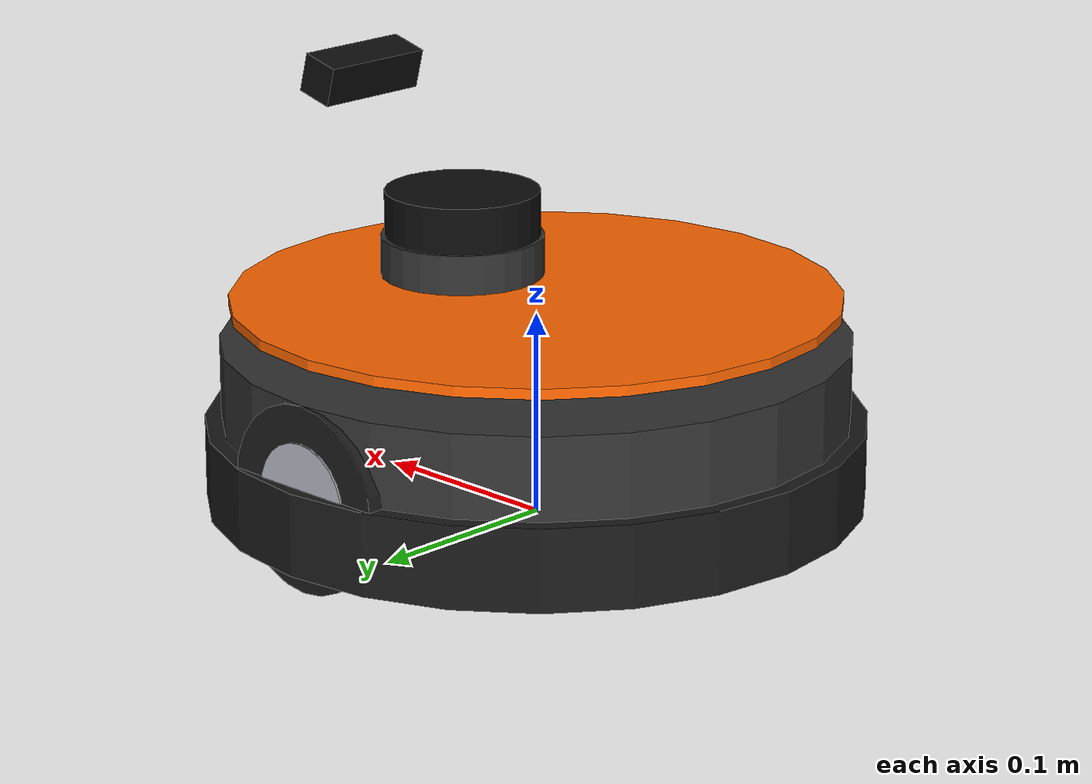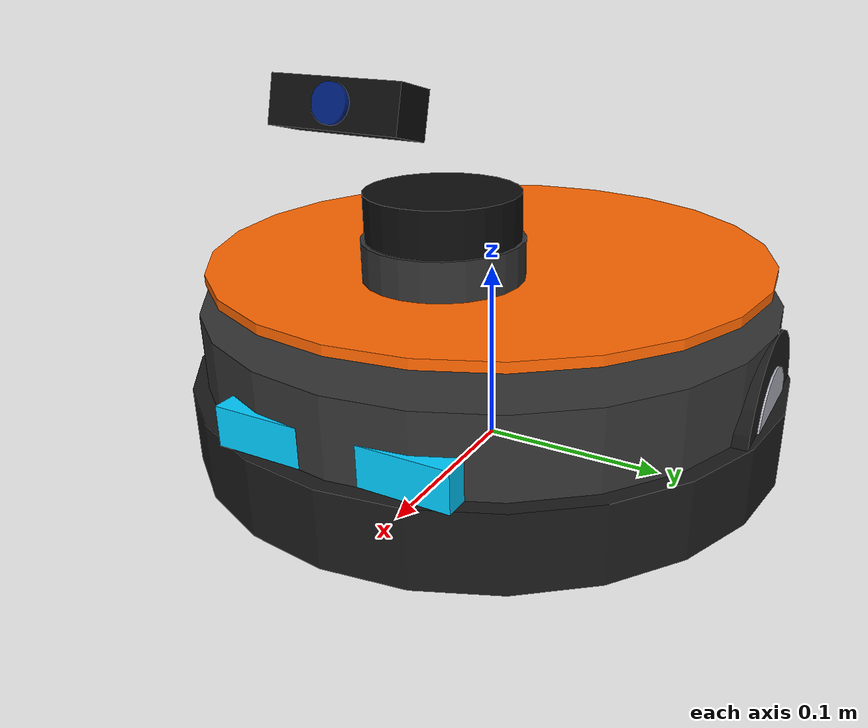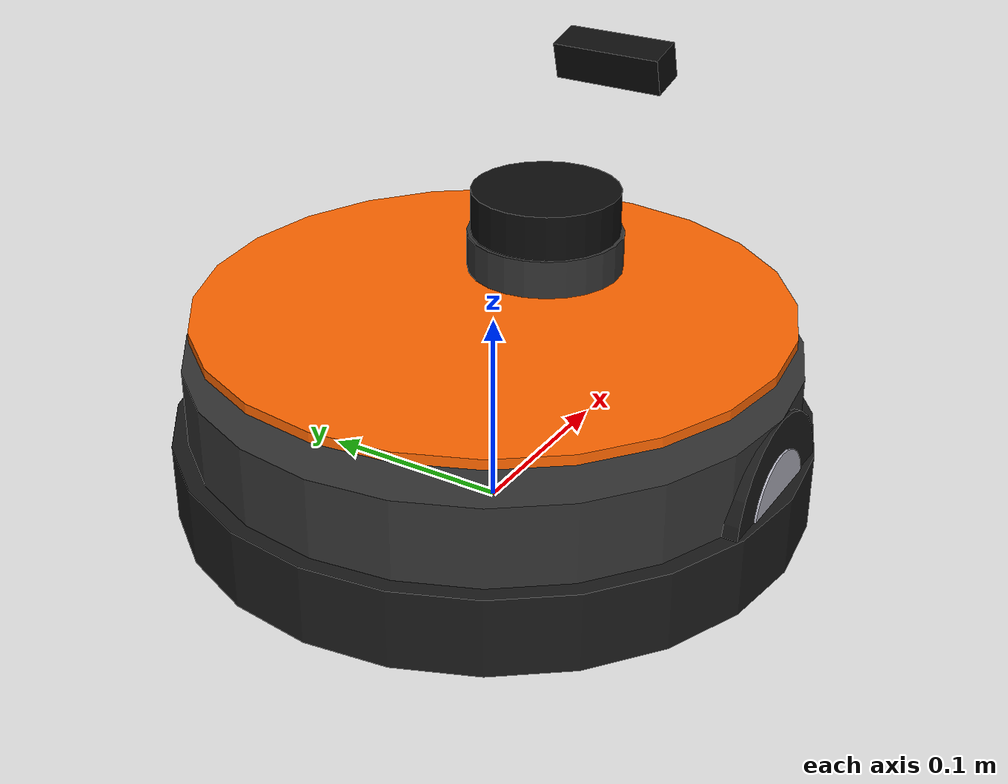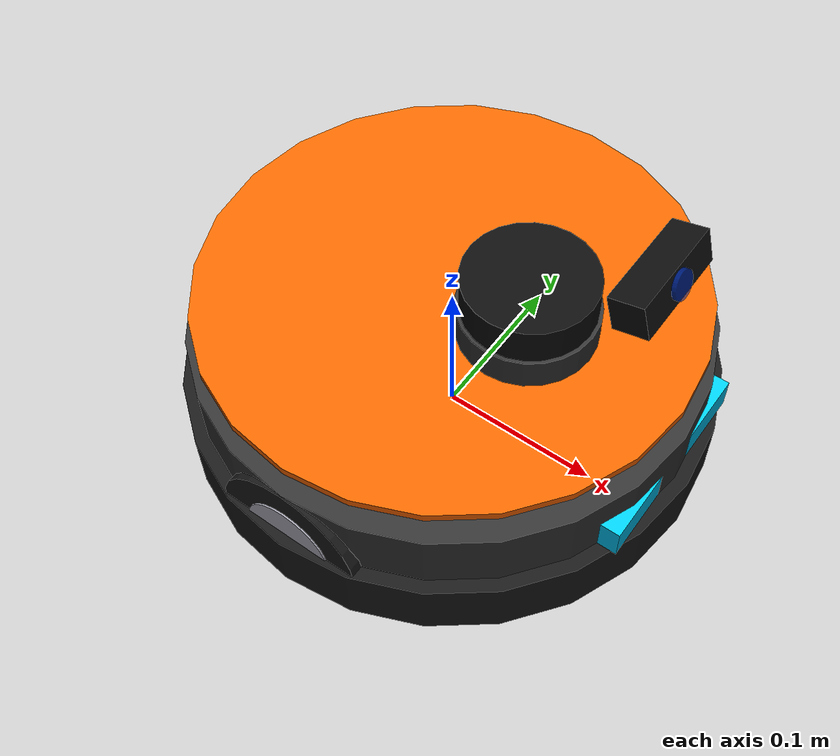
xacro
<?xml version="1.0"?>
<robot name="swarm_bot_v2" xmlns:xacro="http://www.ros.org/wiki/xacro">

    <xacro:include filename="common_macros.xacro" />
    <xacro:include filename="mobile_base.xacro" />
    <xacro:include filename="sensors_stack.xacro" />

    <link name="base_footprint"/>

    <xacro:mobile_base parent_link="base_footprint"/>

    <xacro:sensor_stack parent_link="chassis_main" chassis_height="0.10"/>

    <ros2_control name="GazeboSimSystem" type="system">
        <hardware>
            <plugin>gz_ros2_control/GazeboSimSystem</plugin>
        </hardware>

        <joint name="left_wheel_joint">
            <command_interface name="velocity">
                <param name="min">-10.0</param>
                <param name="max">10.0</param>
            </command_interface>
            <state_interface name="position"/>
            <state_interface name="velocity"/>
        </joint>

        <joint name="right_wheel_joint">
            <command_interface name="velocity">
                <param name="min">-10.0</param>
                <param name="max">10.0</param>
            </command_interface>
            <state_interface name="position"/>
            <state_interface name="velocity"/>
        </joint>
    </ros2_control>

    <gazebo>
        <plugin filename="gz_ros2_control-system" name="gz_ros2_control::GazeboSimROS2ControlPlugin">
            <parameters>$(find swarm_bringup)/config/controllers.yaml</parameters>
        </plugin>
    </gazebo>

</robot>

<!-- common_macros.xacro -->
<robot xmlns:xacro="http://www.ros.org/wiki/xacro">

    <material name="dark_grey"><color rgba="0.2 0.2 0.2 1.0"/></material>
    <material name="industrial_orange"><color rgba="1.0 0.4 0.0 1.0"/></material>
    <material name="brushed_aluminum"><color rgba="0.7 0.7 0.75 1.0"/></material>
    <material name="tire_black"><color rgba="0.1 0.1 0.1 1.0"/></material>
    <material name="sensor_black"><color rgba="0.05 0.05 0.05 1.0"/></material>
    <material name="lens_blue"><color rgba="0.0 0.2 0.8 0.6"/></material>
    <material name="emission_blue"><color rgba="0.0 0.8 1.0 1.0"/></material>

    <xacro:macro name="box_inertia" params="m x y z">
        <inertial>
            <mass value="${m}"/>
            <inertia ixx="${(m/12) * (y*y + z*z)}" ixy="0.0" ixz="0.0"
                     iyy="${(m/12) * (x*x + z*z)}" iyz="0.0"
                     izz="${(m/12) * (x*x + y*y)}"/>
        </inertial>
    </xacro:macro>

    <xacro:macro name="cylinder_inertia" params="m r h">
        <inertial>
            <mass value="${m}"/>
            <inertia ixx="${(m/12) * (3*r*r + h*h)}" ixy="0" ixz="0"
                     iyy="${(m/12) * (3*r*r + h*h)}" iyz="0"
                     izz="${(m/2) * (r*r)}"/>
        </inertial>
    </xacro:macro>

    <xacro:macro name="sphere_inertia" params="m r">
        <inertial>
            <mass value="${m}"/>
            <inertia ixx="${(2/5) * m * (r*r)}" ixy="0.0" ixz="0.0"
                     iyy="${(2/5) * m * (r*r)}" iyz="0.0"
                     izz="${(2/5) * m * (r*r)}"/>
        </inertial>
    </xacro:macro>
</robot>

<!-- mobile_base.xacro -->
<robot xmlns:xacro="http://www.ros.org/wiki/xacro">
    <xacro:property name="base_radius" value="0.16"/>
    <xacro:property name="base_height" value="0.10"/>
    <xacro:property name="wheel_radius" value="0.045"/>
    <xacro:property name="wheel_width" value="0.025"/>
    <xacro:property name="wheel_offset_y" value="0.14"/>
    <xacro:property name="base_elevation" value="0.015"/>

    <xacro:macro name="mobile_base" params="parent_link">

        <link name="chassis_main">
            <visual>
                <origin xyz="0 0 ${base_height*0.2}"/>
                <geometry><cylinder radius="${base_radius}" length="${base_height*0.4}"/></geometry>
                <material name="tire_black"/>
            </visual>
            <visual>
                <origin xyz="0 0 ${base_height*0.6}"/>
                <geometry><cylinder radius="${base_radius * 0.95}" length="${base_height*0.4}"/></geometry>
                <material name="dark_grey"/>
            </visual>
            <visual>
                <origin xyz="0 0 ${base_height - 0.002}"/>
                <geometry><cylinder radius="${base_radius * 0.92}" length="0.005"/></geometry>
                <material name="industrial_orange"/>
            </visual>
            <visual>
                <origin xyz="${base_radius-0.02} 0 ${base_height/2}"/>
                <geometry><box size="0.02 0.12 0.02"/></geometry>
                <material name="emission_blue"/>
            </visual>

            <collision>
                <origin xyz="0 0 ${base_height/2}"/>
                <geometry><cylinder radius="${base_radius}" length="${base_height}"/></geometry>
            </collision>

            <xacro:cylinder_inertia m="5.0" r="${base_radius}" h="${base_height}"/>
        </link>

        <joint name="base_joint" type="fixed">
            <parent link="${parent_link}"/>
            <child link="chassis_main"/>
            <origin xyz="0 0 ${wheel_radius + base_elevation - base_height/2}" rpy="0 0 0"/>
        </joint>

        <gazebo reference="chassis_main">
            <material>Gazebo/DarkGrey</material>
        </gazebo>

        <xacro:macro name="drive_wheel" params="prefix reflect">
            <link name="${prefix}_wheel_link">
                <visual>
                    <geometry><cylinder radius="${wheel_radius}" length="${wheel_width}"/></geometry>
                    <material name="tire_black"/>
                </visual>
                <visual>
                    <geometry><cylinder radius="${wheel_radius * 0.6}" length="${wheel_width + 0.002}"/></geometry>
                    <material name="brushed_aluminum"/>
                </visual>
                <collision>
                    <geometry><cylinder radius="${wheel_radius}" length="${wheel_width}"/></geometry>
                </collision>
                <xacro:cylinder_inertia m="1.0" r="${wheel_radius}" h="${wheel_width}"/>
            </link>

            <joint name="${prefix}_wheel_joint" type="continuous">
                <parent link="chassis_main"/>
                <child link="${prefix}_wheel_link"/>
                <origin xyz="0 ${reflect * wheel_offset_y} ${base_height/2 - base_elevation}" rpy="-1.5707 0 0"/>
                <axis xyz="0 0 1"/>
            </joint>

            <gazebo reference="${prefix}_wheel_link">
                <material>Gazebo/FlatBlack</material>
                <mu1>1.0</mu1> <mu2>1.0</mu2>
            </gazebo>
        </xacro:macro>

        <xacro:drive_wheel prefix="left" reflect="1"/>
        <xacro:drive_wheel prefix="right" reflect="-1"/>

        <xacro:macro name="caster_wheel" params="prefix x_offset">
            <link name="${prefix}_caster_link">
                <visual>
                    <geometry><sphere radius="${wheel_radius*0.6}"/></geometry>
                    <material name="tire_black"/>
                </visual>
                <collision>
                    <geometry><sphere radius="${wheel_radius*0.6}"/></geometry>
                </collision>
                <xacro:sphere_inertia m="0.1" r="${wheel_radius*0.6}"/>
            </link>

            <joint name="${prefix}_caster_joint" type="fixed">
                <parent link="chassis_main"/>
                <child link="${prefix}_caster_link"/>
                <origin xyz="${x_offset} 0 ${base_height/2 - base_elevation + (wheel_radius*0.6 - wheel_radius)}" rpy="0 0 0"/>
            </joint>

            <gazebo reference="${prefix}_caster_link">
                <material>Gazebo/DarkGrey</material>
                <mu1>0.001</mu1>
                <mu2>0.001</mu2>
            </gazebo>
        </xacro:macro>

        <xacro:caster_wheel prefix="front" x_offset="${base_radius - 0.05}"/>
        <xacro:caster_wheel prefix="rear" x_offset="${-base_radius + 0.05}"/>

    </xacro:macro>
</robot>

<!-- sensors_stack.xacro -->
<robot xmlns:xacro="http://www.ros.org/wiki/xacro">

    <xacro:macro name="sensor_stack" params="parent_link chassis_height">

        <link name="lidar_link">
            <visual>
                <origin xyz="0 0 0"/>
                <geometry><cylinder radius="0.04" length="0.02"/></geometry>
                <material name="dark_grey"/>
            </visual>
            <visual>
                <origin xyz="0 0 0.02"/>
                <geometry><cylinder radius="0.038" length="0.025"/></geometry>
                <material name="sensor_black"/>
            </visual>
            <collision>
                <origin xyz="0 0 0.015"/>
                <geometry><cylinder radius="0.04" length="0.05"/></geometry>
            </collision>
            <xacro:cylinder_inertia m="0.2" r="0.04" h="0.05"/>
        </link>

        <joint name="lidar_joint" type="fixed">
            <parent link="${parent_link}"/>
            <child link="lidar_link"/>
            <origin xyz="0.05 0 ${chassis_height + 0.01}" rpy="0 0 0"/>
        </joint>

        <gazebo reference="lidar_link">
            <material>Gazebo/FlatBlack</material>
            <sensor name='lidar' type='gpu_lidar'>
                <pose relative_to='lidar_link'>0 0 0.03 0 0 0</pose>
                <topic>/scan</topic>
                <update_rate>10</update_rate>
                <frame_id>lidar_link</frame_id>
                <gz_frame_id>lidar_link</gz_frame_id>
                <ray>
                    <scan><horizontal><samples>360</samples><resolution>1</resolution><min_angle>-3.14</min_angle><max_angle>3.14</max_angle></horizontal></scan>
                    <range><min>0.10</min><max>12.0</max><resolution>0.01</resolution></range>
                    <noise><type>gaussian</type><mean>0.0</mean><stddev>0.01</stddev></noise>
                </ray>
                <always_on>1</always_on><visualize>true</visualize>
            </sensor>
        </gazebo>

        <link name="camera_link">
            <visual>
                <geometry><box size="0.02 0.06 0.02"/></geometry>
                <material name="sensor_black"/>
            </visual>
            <visual>
                <origin xyz="0.01 0 0" rpy="0 1.57 0"/>
                <geometry><cylinder radius="0.008" length="0.005"/></geometry>
                <material name="lens_blue"/>
            </visual>
            <collision>
                <geometry><box size="0.02 0.06 0.02"/></geometry>
            </collision>
            <xacro:box_inertia m="0.05" x="0.02" y="0.06" z="0.02"/>
        </link>

        <joint name="camera_joint" type="fixed">
            <parent link="${parent_link}"/>
            <child link="camera_link"/>
            <origin xyz="0.12 0 ${chassis_height + 0.09}" rpy="0 -0.26 0"/>
        </joint>

        <link name="camera_link_optical"/>

        <joint name="camera_optical_joint" type="fixed">
            <parent link="camera_link"/>
            <child link="camera_link_optical"/>
            <origin xyz="0 0 0" rpy="-1.5707 0 -1.5707"/>
        </joint>

        <gazebo reference="camera_link">
            <material>Gazebo/FlatBlack</material>

            <sensor name="camera_rgb" type="camera">
                <pose relative_to="camera_link">0.01 0 0 0 0 0</pose>
                <always_on>1</always_on>
                <update_rate>10</update_rate>
                <topic>/camera/image</topic>

                <frame_id>camera_link_optical</frame_id>
                <gz_frame_id>camera_link_optical</gz_frame_id>

                <camera>
                    <horizontal_fov>1.2</horizontal_fov>
                    <image><width>640</width><height>480</height><format>R8G8B8</format></image>
                    <clip><near>0.05</near><far>10.0</far></clip>
                </camera>
            </sensor>

            <sensor name="camera_depth" type="depth_camera">
                <pose relative_to="camera_link">0.01 0 0 0 0 0</pose>
                <always_on>1</always_on>
                <update_rate>10</update_rate>
                <topic>/camera/depth_image</topic>

                <frame_id>camera_link_optical</frame_id>
                <gz_frame_id>camera_link_optical</gz_frame_id>

                <camera>
                    <horizontal_fov>1.2</horizontal_fov>
                    <image><width>640</width><height>480</height><format>R_FLOAT32</format></image>
                    <clip><near>0.05</near><far>10.0</far></clip>
                </camera>
            </sensor>
        </gazebo>

        <link name="imu_link">
            <visual><geometry><box size="0.01 0.01 0.01"/></geometry><material name="industrial_orange"/></visual>
            <inertial><mass value="0.01"/><inertia ixx="1e-6" ixy="0" ixz="0" iyy="1e-6" iyz="0" izz="1e-6"/></inertial>
        </link>

        <joint name="imu_joint" type="fixed">
            <parent link="${parent_link}"/>
            <child link="imu_link"/>
            <origin xyz="0 0 0.05" rpy="0 0 0"/>
        </joint>

         <gazebo reference="imu_link">
            <sensor name="imu" type="imu">
                <frame_id>imu_link</frame_id>
                <gz_frame_id>imu_link</gz_frame_id>
                <always_on>1</always_on><update_rate>100</update_rate><topic>/imu</topic>
                <imu>
                    <angular_velocity>
                        <x><noise type="gaussian"><mean>0.0</mean><stddev>2e-4</stddev></noise></x>
                        <y><noise type="gaussian"><mean>0.0</mean><stddev>2e-4</stddev></noise></y>
                        <z><noise type="gaussian"><mean>0.0</mean><stddev>2e-4</stddev></noise></z>
                    </angular_velocity>
                    <linear_acceleration>
                        <x><noise type="gaussian"><mean>0.0</mean><stddev>1.7e-2</stddev></noise></x>
                        <y><noise type="gaussian"><mean>0.0</mean><stddev>1.7e-2</stddev></noise></y>
                        <z><noise type="gaussian"><mean>0.0</mean><stddev>1.7e-2</stddev></noise></z>
                    </linear_acceleration>
                </imu>
            </sensor>
        </gazebo>

    </xacro:macro>
</robot>
